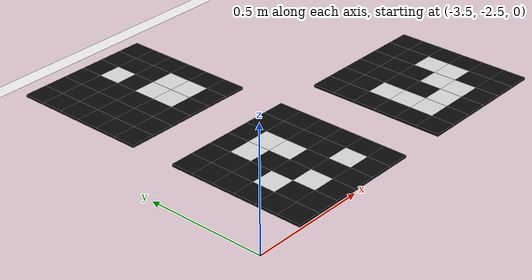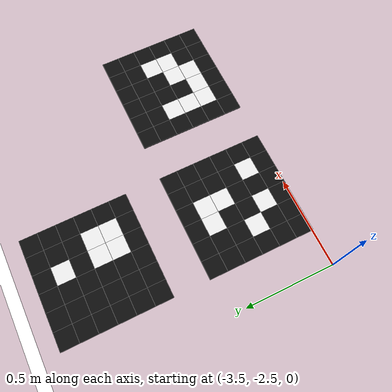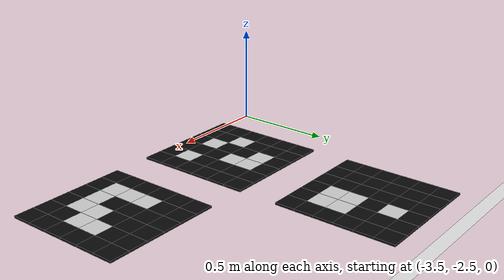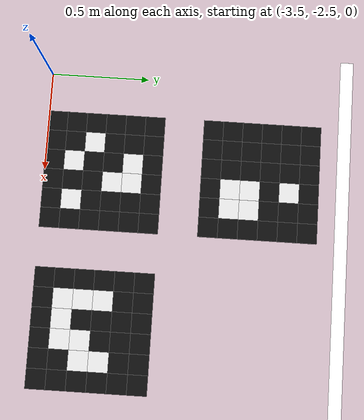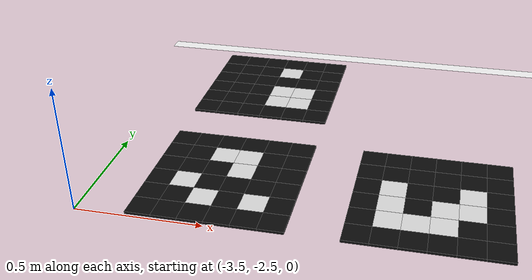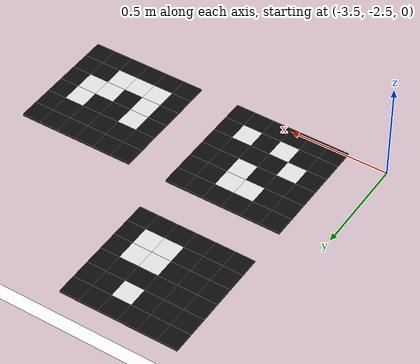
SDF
<sdf version="1.10">
 <world name="uav_world123">
  <model name="aruco_marker_104">
   <pose>-3 -2.2000000000000002 0.014999999999999999 0 0 0</pose>
   <static>true</static>
   <link name="link">
    <visual name="block_0_0">
     <pose>-0.25 -0.25 0 0 0 0</pose>
     <geometry><box><size>0.10000000000000001 0.10000000000000001 0.01</size></box></geometry>
     <material>
      <ambient>0.0500000007 0.0500000007 0.0500000007 1</ambient>
      <diffuse>0.0500000007 0.0500000007 0.0500000007 1</diffuse>
     </material>
    </visual>
    <visual name="block_0_1">
     <pose>-0.15000000000000002 -0.25 0 0 0 0</pose>
     <geometry><box><size>0.10000000000000001 0.10000000000000001 0.01</size></box></geometry>
     <material>
      <ambient>0.0500000007 0.0500000007 0.0500000007 1</ambient>
      <diffuse>0.0500000007 0.0500000007 0.0500000007 1</diffuse>
     </material>
    </visual>
    <visual name="block_0_2">
     <pose>-0.050000000000000003 -0.25 0 0 0 0</pose>
     <geometry><box><size>0.10000000000000001 0.10000000000000001 0.01</size></box></geometry>
     <material>
      <ambient>0.0500000007 0.0500000007 0.0500000007 1</ambient>
      <diffuse>0.0500000007 0.0500000007 0.0500000007 1</diffuse>
     </material>
    </visual>
    <visual name="block_0_3">
     <pose>0.050000000000000003 -0.25 0 0 0 0</pose>
     <geometry><box><size>0.10000000000000001 0.10000000000000001 0.01</size></box></geometry>
     <material>
      <ambient>0.0500000007 0.0500000007 0.0500000007 1</ambient>
      <diffuse>0.0500000007 0.0500000007 0.0500000007 1</diffuse>
     </material>
    </visual>
    <visual name="block_0_4">
     <pose>0.15000000000000002 -0.25 0 0 0 0</pose>
     <geometry><box><size>0.10000000000000001 0.10000000000000001 0.01</size></box></geometry>
     <material>
      <ambient>0.0500000007 0.0500000007 0.0500000007 1</ambient>
      <diffuse>0.0500000007 0.0500000007 0.0500000007 1</diffuse>
     </material>
    </visual>
    <visual name="block_0_5">
     <pose>0.25 -0.25 0 0 0 0</pose>
     <geometry><box><size>0.10000000000000001 0.10000000000000001 0.01</size></box></geometry>
     <material>
      <ambient>0.0500000007 0.0500000007 0.0500000007 1</ambient>
      <diffuse>0.0500000007 0.0500000007 0.0500000007 1</diffuse>
     </material>
    </visual>
    <visual name="block_1_0">
     <pose>-0.25 -0.15000000000000002 0 0 0 0</pose>
     <geometry><box><size>0.10000000000000001 0.10000000000000001 0.01</size></box></geometry>
     <material>
      <ambient>0.0500000007 0.0500000007 0.0500000007 1</ambient>
      <diffuse>0.0500000007 0.0500000007 0.0500000007 1</diffuse>
     </material>
    </visual>
    <visual name="block_1_1">
     <pose>-0.15000000000000002 -0.15000000000000002 0 0 0 0</pose>
     <geometry><box><size>0.10000000000000001 0.10000000000000001 0.01</size></box></geometry>
     <material>
      <ambient>0.0500000007 0.0500000007 0.0500000007 1</ambient>
      <diffuse>0.0500000007 0.0500000007 0.0500000007 1</diffuse>
     </material>
    </visual>
    <visual name="block_1_2">
     <pose>-0.050000000000000003 -0.15000000000000002 0 0 0 0</pose>
     <geometry><box><size>0.10000000000000001 0.10000000000000001 0.01</size></box></geometry>
     <material>
      <ambient>0.899999976 0.899999976 0.899999976 1</ambient>
      <diffuse>0.899999976 0.899999976 0.899999976 1</diffuse>
     </material>
    </visual>
    <visual name="block_1_3">
     <pose>0.050000000000000003 -0.15000000000000002 0 0 0 0</pose>
     <geometry><box><size>0.10000000000000001 0.10000000000000001 0.01</size></box></geometry>
     <material>
      <ambient>0.0500000007 0.0500000007 0.0500000007 1</ambient>
      <diffuse>0.0500000007 0.0500000007 0.0500000007 1</diffuse>
     </material>
    </visual>
    <visual name="block_1_4">
     <pose>0.15000000000000002 -0.15000000000000002 0 0 0 0</pose>
     <geometry><box><size>0.10000000000000001 0.10000000000000001 0.01</size></box></geometry>
     <material>
      <ambient>0.899999976 0.899999976 0.899999976 1</ambient>
      <diffuse>0.899999976 0.899999976 0.899999976 1</diffuse>
     </material>
    </visual>
    <visual name="block_1_5">
     <pose>0.25 -0.15000000000000002 0 0 0 0</pose>
     <geometry><box><size>0.10000000000000001 0.10000000000000001 0.01</size></box></geometry>
     <material>
      <ambient>0.0500000007 0.0500000007 0.0500000007 1</ambient>
      <diffuse>0.0500000007 0.0500000007 0.0500000007 1</diffuse>
     </material>
    </visual>
    <visual name="block_2_0">
     <pose>-0.25 -0.050000000000000003 0 0 0 0</pose>
     <geometry><box><size>0.10000000000000001 0.10000000000000001 0.01</size></box></geometry>
     <material>
      <ambient>0.0500000007 0.0500000007 0.0500000007 1</ambient>
      <diffuse>0.0500000007 0.0500000007 0.0500000007 1</diffuse>
     </material>
    </visual>
    <visual name="block_2_1">
     <pose>-0.15000000000000002 -0.050000000000000003 0 0 0 0</pose>
     <geometry><box><size>0.10000000000000001 0.10000000000000001 0.01</size></box></geometry>
     <material>
      <ambient>0.899999976 0.899999976 0.899999976 1</ambient>
      <diffuse>0.899999976 0.899999976 0.899999976 1</diffuse>
     </material>
    </visual>
    <visual name="block_2_2">
     <pose>-0.050000000000000003 -0.050000000000000003 0 0 0 0</pose>
     <geometry><box><size>0.10000000000000001 0.10000000000000001 0.01</size></box></geometry>
     <material>
      <ambient>0.0500000007 0.0500000007 0.0500000007 1</ambient>
      <diffuse>0.0500000007 0.0500000007 0.0500000007 1</diffuse>
     </material>
    </visual>
    <visual name="block_2_3">
     <pose>0.050000000000000003 -0.050000000000000003 0 0 0 0</pose>
     <geometry><box><size>0.10000000000000001 0.10000000000000001 0.01</size></box></geometry>
     <material>
      <ambient>0.0500000007 0.0500000007 0.0500000007 1</ambient>
      <diffuse>0.0500000007 0.0500000007 0.0500000007 1</diffuse>
     </material>
    </visual>
    <visual name="block_2_4">
     <pose>0.15000000000000002 -0.050000000000000003 0 0 0 0</pose>
     <geometry><box><size>0.10000000000000001 0.10000000000000001 0.01</size></box></geometry>
     <material>
      <ambient>0.0500000007 0.0500000007 0.0500000007 1</ambient>
      <diffuse>0.0500000007 0.0500000007 0.0500000007 1</diffuse>
     </material>
    </visual>
    <visual name="block_2_5">
     <pose>0.25 -0.050000000000000003 0 0 0 0</pose>
     <geometry><box><size>0.10000000000000001 0.10000000000000001 0.01</size></box></geometry>
     <material>
      <ambient>0.0500000007 0.0500000007 0.0500000007 1</ambient>
      <diffuse>0.0500000007 0.0500000007 0.0500000007 1</diffuse>
     </material>
    </visual>
    <visual name="block_3_0">
     <pose>-0.25 0.050000000000000003 0 0 0 0</pose>
     <geometry><box><size>0.10000000000000001 0.10000000000000001 0.01</size></box></geometry>
     <material>
      <ambient>0.0500000007 0.0500000007 0.0500000007 1</ambient>
      <diffuse>0.0500000007 0.0500000007 0.0500000007 1</diffuse>
     </material>
    </visual>
    <visual name="block_3_1">
     <pose>-0.15000000000000002 0.050000000000000003 0 0 0 0</pose>
     <geometry><box><size>0.10000000000000001 0.10000000000000001 0.01</size></box></geometry>
     <material>
      <ambient>0.0500000007 0.0500000007 0.0500000007 1</ambient>
      <diffuse>0.0500000007 0.0500000007 0.0500000007 1</diffuse>
     </material>
    </visual>
    <visual name="block_3_2">
     <pose>-0.050000000000000003 0.050000000000000003 0 0 0 0</pose>
     <geometry><box><size>0.10000000000000001 0.10000000000000001 0.01</size></box></geometry>
     <material>
      <ambient>0.0500000007 0.0500000007 0.0500000007 1</ambient>
      <diffuse>0.0500000007 0.0500000007 0.0500000007 1</diffuse>
     </material>
    </visual>
    <visual name="block_3_3">
     <pose>0.050000000000000003 0.050000000000000003 0 0 0 0</pose>
     <geometry><box><size>0.10000000000000001 0.10000000000000001 0.01</size></box></geometry>
     <material>
      <ambient>0.899999976 0.899999976 0.899999976 1</ambient>
      <diffuse>0.899999976 0.899999976 0.899999976 1</diffuse>
     </material>
    </visual>
    <visual name="block_3_4">
     <pose>0.15000000000000002 0.050000000000000003 0 0 0 0</pose>
     <geometry><box><size>0.10000000000000001 0.10000000000000001 0.01</size></box></geometry>
     <material>
      <ambient>0.0500000007 0.0500000007 0.0500000007 1</ambient>
      <diffuse>0.0500000007 0.0500000007 0.0500000007 1</diffuse>
     </material>
    </visual>
    <visual name="block_3_5">
     <pose>0.25 0.050000000000000003 0 0 0 0</pose>
     <geometry><box><size>0.10000000000000001 0.10000000000000001 0.01</size></box></geometry>
     <material>
      <ambient>0.0500000007 0.0500000007 0.0500000007 1</ambient>
      <diffuse>0.0500000007 0.0500000007 0.0500000007 1</diffuse>
     </material>
    </visual>
    <visual name="block_4_0">
     <pose>-0.25 0.15000000000000002 0 0 0 0</pose>
     <geometry><box><size>0.10000000000000001 0.10000000000000001 0.01</size></box></geometry>
     <material>
      <ambient>0.0500000007 0.0500000007 0.0500000007 1</ambient>
      <diffuse>0.0500000007 0.0500000007 0.0500000007 1</diffuse>
     </material>
    </visual>
    <visual name="block_4_1">
     <pose>-0.15000000000000002 0.15000000000000002 0 0 0 0</pose>
     <geometry><box><size>0.10000000000000001 0.10000000000000001 0.01</size></box></geometry>
     <material>
      <ambient>0.0500000007 0.0500000007 0.0500000007 1</ambient>
      <diffuse>0.0500000007 0.0500000007 0.0500000007 1</diffuse>
     </material>
    </visual>
    <visual name="block_4_2">
     <pose>-0.050000000000000003 0.15000000000000002 0 0 0 0</pose>
     <geometry><box><size>0.10000000000000001 0.10000000000000001 0.01</size></box></geometry>
     <material>
      <ambient>0.899999976 0.899999976 0.899999976 1</ambient>
      <diffuse>0.899999976 0.899999976 0.899999976 1</diffuse>
     </material>
    </visual>
    <visual name="block_4_3">
     <pose>0.050000000000000003 0.15000000000000002 0 0 0 0</pose>
     <geometry><box><size>0.10000000000000001 0.10000000000000001 0.01</size></box></geometry>
     <material>
      <ambient>0.899999976 0.899999976 0.899999976 1</ambient>
      <diffuse>0.899999976 0.899999976 0.899999976 1</diffuse>
     </material>
    </visual>
    <visual name="block_4_4">
     <pose>0.15000000000000002 0.15000000000000002 0 0 0 0</pose>
     <geometry><box><size>0.10000000000000001 0.10000000000000001 0.01</size></box></geometry>
     <material>
      <ambient>0.0500000007 0.0500000007 0.0500000007 1</ambient>
      <diffuse>0.0500000007 0.0500000007 0.0500000007 1</diffuse>
     </material>
    </visual>
    <visual name="block_4_5">
     <pose>0.25 0.15000000000000002 0 0 0 0</pose>
     <geometry><box><size>0.10000000000000001 0.10000000000000001 0.01</size></box></geometry>
     <material>
      <ambient>0.0500000007 0.0500000007 0.0500000007 1</ambient>
      <diffuse>0.0500000007 0.0500000007 0.0500000007 1</diffuse>
     </material>
    </visual>
    <visual name="block_5_0">
     <pose>-0.25 0.25 0 0 0 0</pose>
     <geometry><box><size>0.10000000000000001 0.10000000000000001 0.01</size></box></geometry>
     <material>
      <ambient>0.0500000007 0.0500000007 0.0500000007 1</ambient>
      <diffuse>0.0500000007 0.0500000007 0.0500000007 1</diffuse>
     </material>
    </visual>
    <visual name="block_5_1">
     <pose>-0.15000000000000002 0.25 0 0 0 0</pose>
     <geometry><box><size>0.10000000000000001 0.10000000000000001 0.01</size></box></geometry>
     <material>
      <ambient>0.0500000007 0.0500000007 0.0500000007 1</ambient>
      <diffuse>0.0500000007 0.0500000007 0.0500000007 1</diffuse>
     </material>
    </visual>
    <visual name="block_5_2">
     <pose>-0.050000000000000003 0.25 0 0 0 0</pose>
     <geometry><box><size>0.10000000000000001 0.10000000000000001 0.01</size></box></geometry>
     <material>
      <ambient>0.0500000007 0.0500000007 0.0500000007 1</ambient>
      <diffuse>0.0500000007 0.0500000007 0.0500000007 1</diffuse>
     </material>
    </visual>
    <visual name="block_5_3">
     <pose>0.050000000000000003 0.25 0 0 0 0</pose>
     <geometry><box><size>0.10000000000000001 0.10000000000000001 0.01</size></box></geometry>
     <material>
      <ambient>0.0500000007 0.0500000007 0.0500000007 1</ambient>
      <diffuse>0.0500000007 0.0500000007 0.0500000007 1</diffuse>
     </material>
    </visual>
    <visual name="block_5_4">
     <pose>0.15000000000000002 0.25 0 0 0 0</pose>
     <geometry><box><size>0.10000000000000001 0.10000000000000001 0.01</size></box></geometry>
     <material>
      <ambient>0.0500000007 0.0500000007 0.0500000007 1</ambient>
      <diffuse>0.0500000007 0.0500000007 0.0500000007 1</diffuse>
     </material>
    </visual>
    <visual name="block_5_5">
     <pose>0.25 0.25 0 0 0 0</pose>
     <geometry><box><size>0.10000000000000001 0.10000000000000001 0.01</size></box></geometry>
     <material>
      <ambient>0.0500000007 0.0500000007 0.0500000007 1</ambient>
      <diffuse>0.0500000007 0.0500000007 0.0500000007 1</diffuse>
     </material>
    </visual>
    <inertial>
     <mass>1</mass>
     <inertia><ixx>1</ixx><ixy>0</ixy><ixz>0</ixz><iyy>1</iyy><iyz>0</iyz><izz>1</izz></inertia>
    </inertial>
   </link>
  </model>
  <model name="aruco_marker_105">
   <pose>-2.2000000000000002 -2.2000000000000002 0.014999999999999999 0 0 0</pose>
   <static>true</static>
   <link name="link">
    <visual name="block_0_0">
     <pose>-0.25 -0.25 0 0 0 0</pose>
     <geometry><box><size>0.10000000000000001 0.10000000000000001 0.01</size></box></geometry>
     <material>
      <ambient>0.0500000007 0.0500000007 0.0500000007 1</ambient>
      <diffuse>0.0500000007 0.0500000007 0.0500000007 1</diffuse>
     </material>
    </visual>
    <visual name="block_0_1">
     <pose>-0.15000000000000002 -0.25 0 0 0 0</pose>
     <geometry><box><size>0.10000000000000001 0.10000000000000001 0.01</size></box></geometry>
     <material>
      <ambient>0.0500000007 0.0500000007 0.0500000007 1</ambient>
      <diffuse>0.0500000007 0.0500000007 0.0500000007 1</diffuse>
     </material>
    </visual>
    <visual name="block_0_2">
     <pose>-0.050000000000000003 -0.25 0 0 0 0</pose>
     <geometry><box><size>0.10000000000000001 0.10000000000000001 0.01</size></box></geometry>
     <material>
      <ambient>0.0500000007 0.0500000007 0.0500000007 1</ambient>
      <diffuse>0.0500000007 0.0500000007 0.0500000007 1</diffuse>
     </material>
    </visual>
    <visual name="block_0_3">
     <pose>0.050000000000000003 -0.25 0 0 0 0</pose>
     <geometry><box><size>0.10000000000000001 0.10000000000000001 0.01</size></box></geometry>
     <material>
      <ambient>0.0500000007 0.0500000007 0.0500000007 1</ambient>
      <diffuse>0.0500000007 0.0500000007 0.0500000007 1</diffuse>
     </material>
    </visual>
    <visual name="block_0_4">
     <pose>0.15000000000000002 -0.25 0 0 0 0</pose>
     <geometry><box><size>0.10000000000000001 0.10000000000000001 0.01</size></box></geometry>
     <material>
      <ambient>0.0500000007 0.0500000007 0.0500000007 1</ambient>
      <diffuse>0.0500000007 0.0500000007 0.0500000007 1</diffuse>
     </material>
    </visual>
    <visual name="block_0_5">
     <pose>0.25 -0.25 0 0 0 0</pose>
     <geometry><box><size>0.10000000000000001 0.10000000000000001 0.01</size></box></geometry>
     <material>
      <ambient>0.0500000007 0.0500000007 0.0500000007 1</ambient>
      <diffuse>0.0500000007 0.0500000007 0.0500000007 1</diffuse>
     </material>
    </visual>
    <visual name="block_1_0">
     <pose>-0.25 -0.15000000000000002 0 0 0 0</pose>
     <geometry><box><size>0.10000000000000001 0.10000000000000001 0.01</size></box></geometry>
     <material>
      <ambient>0.0500000007 0.0500000007 0.0500000007 1</ambient>
      <diffuse>0.0500000007 0.0500000007 0.0500000007 1</diffuse>
     </material>
    </visual>
    <visual name="block_1_1">
     <pose>-0.15000000000000002 -0.15000000000000002 0 0 0 0</pose>
     <geometry><box><size>0.10000000000000001 0.10000000000000001 0.01</size></box></geometry>
     <material>
      <ambient>0.899999976 0.899999976 0.899999976 1</ambient>
      <diffuse>0.899999976 0.899999976 0.899999976 1</diffuse>
     </material>
    </visual>
    <visual name="block_1_2">
     <pose>-0.050000000000000003 -0.15000000000000002 0 0 0 0</pose>
     <geometry><box><size>0.10000000000000001 0.10000000000000001 0.01</size></box></geometry>
     <material>
      <ambient>0.899999976 0.899999976 0.899999976 1</ambient>
      <diffuse>0.899999976 0.899999976 0.899999976 1</diffuse>
     </material>
    </visual>
    <visual name="block_1_3">
     <pose>0.050000000000000003 -0.15000000000000002 0 0 0 0</pose>
     <geometry><box><size>0.10000000000000001 0.10000000000000001 0.01</size></box></geometry>
     <material>
      <ambient>0.899999976 0.899999976 0.899999976 1</ambient>
      <diffuse>0.899999976 0.899999976 0.899999976 1</diffuse>
     </material>
    </visual>
    <visual name="block_1_4">
     <pose>0.15000000000000002 -0.15000000000000002 0 0 0 0</pose>
     <geometry><box><size>0.10000000000000001 0.10000000000000001 0.01</size></box></geometry>
     <material>
      <ambient>0.0500000007 0.0500000007 0.0500000007 1</ambient>
      <diffuse>0.0500000007 0.0500000007 0.0500000007 1</diffuse>
     </material>
    </visual>
    <visual name="block_1_5">
     <pose>0.25 -0.15000000000000002 0 0 0 0</pose>
     <geometry><box><size>0.10000000000000001 0.10000000000000001 0.01</size></box></geometry>
     <material>
      <ambient>0.0500000007 0.0500000007 0.0500000007 1</ambient>
      <diffuse>0.0500000007 0.0500000007 0.0500000007 1</diffuse>
     </material>
    </visual>
    <visual name="block_2_0">
     <pose>-0.25 -0.050000000000000003 0 0 0 0</pose>
     <geometry><box><size>0.10000000000000001 0.10000000000000001 0.01</size></box></geometry>
     <material>
      <ambient>0.0500000007 0.0500000007 0.0500000007 1</ambient>
      <diffuse>0.0500000007 0.0500000007 0.0500000007 1</diffuse>
     </material>
    </visual>
    <visual name="block_2_1">
     <pose>-0.15000000000000002 -0.050000000000000003 0 0 0 0</pose>
     <geometry><box><size>0.10000000000000001 0.10000000000000001 0.01</size></box></geometry>
     <material>
      <ambient>0.899999976 0.899999976 0.899999976 1</ambient>
      <diffuse>0.899999976 0.899999976 0.899999976 1</diffuse>
     </material>
    </visual>
    <visual name="block_2_2">
     <pose>-0.050000000000000003 -0.050000000000000003 0 0 0 0</pose>
     <geometry><box><size>0.10000000000000001 0.10000000000000001 0.01</size></box></geometry>
     <material>
      <ambient>0.0500000007 0.0500000007 0.0500000007 1</ambient>
      <diffuse>0.0500000007 0.0500000007 0.0500000007 1</diffuse>
     </material>
    </visual>
    <visual name="block_2_3">
     <pose>0.050000000000000003 -0.050000000000000003 0 0 0 0</pose>
     <geometry><box><size>0.10000000000000001 0.10000000000000001 0.01</size></box></geometry>
     <material>
      <ambient>0.899999976 0.899999976 0.899999976 1</ambient>
      <diffuse>0.899999976 0.899999976 0.899999976 1</diffuse>
     </material>
    </visual>
    <visual name="block_2_4">
     <pose>0.15000000000000002 -0.050000000000000003 0 0 0 0</pose>
     <geometry><box><size>0.10000000000000001 0.10000000000000001 0.01</size></box></geometry>
     <material>
      <ambient>0.899999976 0.899999976 0.899999976 1</ambient>
      <diffuse>0.899999976 0.899999976 0.899999976 1</diffuse>
     </material>
    </visual>
    <visual name="block_2_5">
     <pose>0.25 -0.050000000000000003 0 0 0 0</pose>
     <geometry><box><size>0.10000000000000001 0.10000000000000001 0.01</size></box></geometry>
     <material>
      <ambient>0.0500000007 0.0500000007 0.0500000007 1</ambient>
      <diffuse>0.0500000007 0.0500000007 0.0500000007 1</diffuse>
     </material>
    </visual>
    <visual name="block_3_0">
     <pose>-0.25 0.050000000000000003 0 0 0 0</pose>
     <geometry><box><size>0.10000000000000001 0.10000000000000001 0.01</size></box></geometry>
     <material>
      <ambient>0.0500000007 0.0500000007 0.0500000007 1</ambient>
      <diffuse>0.0500000007 0.0500000007 0.0500000007 1</diffuse>
     </material>
    </visual>
    <visual name="block_3_1">
     <pose>-0.15000000000000002 0.050000000000000003 0 0 0 0</pose>
     <geometry><box><size>0.10000000000000001 0.10000000000000001 0.01</size></box></geometry>
     <material>
      <ambient>0.899999976 0.899999976 0.899999976 1</ambient>
      <diffuse>0.899999976 0.899999976 0.899999976 1</diffuse>
     </material>
    </visual>
    <visual name="block_3_2">
     <pose>-0.050000000000000003 0.050000000000000003 0 0 0 0</pose>
     <geometry><box><size>0.10000000000000001 0.10000000000000001 0.01</size></box></geometry>
     <material>
      <ambient>0.0500000007 0.0500000007 0.0500000007 1</ambient>
      <diffuse>0.0500000007 0.0500000007 0.0500000007 1</diffuse>
     </material>
    </visual>
    <visual name="block_3_3">
     <pose>0.050000000000000003 0.050000000000000003 0 0 0 0</pose>
     <geometry><box><size>0.10000000000000001 0.10000000000000001 0.01</size></box></geometry>
     <material>
      <ambient>0.0500000007 0.0500000007 0.0500000007 1</ambient>
      <diffuse>0.0500000007 0.0500000007 0.0500000007 1</diffuse>
     </material>
    </visual>
    <visual name="block_3_4">
     <pose>0.15000000000000002 0.050000000000000003 0 0 0 0</pose>
     <geometry><box><size>0.10000000000000001 0.10000000000000001 0.01</size></box></geometry>
     <material>
      <ambient>0.899999976 0.899999976 0.899999976 1</ambient>
      <diffuse>0.899999976 0.899999976 0.899999976 1</diffuse>
     </material>
    </visual>
    <visual name="block_3_5">
     <pose>0.25 0.050000000000000003 0 0 0 0</pose>
     <geometry><box><size>0.10000000000000001 0.10000000000000001 0.01</size></box></geometry>
     <material>
      <ambient>0.0500000007 0.0500000007 0.0500000007 1</ambient>
      <diffuse>0.0500000007 0.0500000007 0.0500000007 1</diffuse>
     </material>
    </visual>
    <visual name="block_4_0">
     <pose>-0.25 0.15000000000000002 0 0 0 0</pose>
     <geometry><box><size>0.10000000000000001 0.10000000000000001 0.01</size></box></geometry>
     <material>
      <ambient>0.0500000007 0.0500000007 0.0500000007 1</ambient>
      <diffuse>0.0500000007 0.0500000007 0.0500000007 1</diffuse>
     </material>
    </visual>
    <visual name="block_4_1">
     <pose>-0.15000000000000002 0.15000000000000002 0 0 0 0</pose>
     <geometry><box><size>0.10000000000000001 0.10000000000000001 0.01</size></box></geometry>
     <material>
      <ambient>0.0500000007 0.0500000007 0.0500000007 1</ambient>
      <diffuse>0.0500000007 0.0500000007 0.0500000007 1</diffuse>
     </material>
    </visual>
    <visual name="block_4_2">
     <pose>-0.050000000000000003 0.15000000000000002 0 0 0 0</pose>
     <geometry><box><size>0.10000000000000001 0.10000000000000001 0.01</size></box></geometry>
     <material>
      <ambient>0.0500000007 0.0500000007 0.0500000007 1</ambient>
      <diffuse>0.0500000007 0.0500000007 0.0500000007 1</diffuse>
     </material>
    </visual>
    <visual name="block_4_3">
     <pose>0.050000000000000003 0.15000000000000002 0 0 0 0</pose>
     <geometry><box><size>0.10000000000000001 0.10000000000000001 0.01</size></box></geometry>
     <material>
      <ambient>0.0500000007 0.0500000007 0.0500000007 1</ambient>
      <diffuse>0.0500000007 0.0500000007 0.0500000007 1</diffuse>
     </material>
    </visual>
    <visual name="block_4_4">
     <pose>0.15000000000000002 0.15000000000000002 0 0 0 0</pose>
     <geometry><box><size>0.10000000000000001 0.10000000000000001 0.01</size></box></geometry>
     <material>
      <ambient>0.0500000007 0.0500000007 0.0500000007 1</ambient>
      <diffuse>0.0500000007 0.0500000007 0.0500000007 1</diffuse>
     </material>
    </visual>
    <visual name="block_4_5">
     <pose>0.25 0.15000000000000002 0 0 0 0</pose>
     <geometry><box><size>0.10000000000000001 0.10000000000000001 0.01</size></box></geometry>
     <material>
      <ambient>0.0500000007 0.0500000007 0.0500000007 1</ambient>
      <diffuse>0.0500000007 0.0500000007 0.0500000007 1</diffuse>
     </material>
    </visual>
    <visual name="block_5_0">
     <pose>-0.25 0.25 0 0 0 0</pose>
     <geometry><box><size>0.10000000000000001 0.10000000000000001 0.01</size></box></geometry>
     <material>
      <ambient>0.0500000007 0.0500000007 0.0500000007 1</ambient>
      <diffuse>0.0500000007 0.0500000007 0.0500000007 1</diffuse>
     </material>
    </visual>
    <visual name="block_5_1">
     <pose>-0.15000000000000002 0.25 0 0 0 0</pose>
     <geometry><box><size>0.10000000000000001 0.10000000000000001 0.01</size></box></geometry>
     <material>
      <ambient>0.0500000007 0.0500000007 0.0500000007 1</ambient>
      <diffuse>0.0500000007 0.0500000007 0.0500000007 1</diffuse>
     </material>
    </visual>
    <visual name="block_5_2">
     <pose>-0.050000000000000003 0.25 0 0 0 0</pose>
     <geometry><box><size>0.10000000000000001 0.10000000000000001 0.01</size></box></geometry>
     <material>
      <ambient>0.0500000007 0.0500000007 0.0500000007 1</ambient>
      <diffuse>0.0500000007 0.0500000007 0.0500000007 1</diffuse>
     </material>
    </visual>
    <visual name="block_5_3">
     <pose>0.050000000000000003 0.25 0 0 0 0</pose>
     <geometry><box><size>0.10000000000000001 0.10000000000000001 0.01</size></box></geometry>
     <material>
      <ambient>0.0500000007 0.0500000007 0.0500000007 1</ambient>
      <diffuse>0.0500000007 0.0500000007 0.0500000007 1</diffuse>
     </material>
    </visual>
    <visual name="block_5_4">
     <pose>0.15000000000000002 0.25 0 0 0 0</pose>
     <geometry><box><size>0.10000000000000001 0.10000000000000001 0.01</size></box></geometry>
     <material>
      <ambient>0.0500000007 0.0500000007 0.0500000007 1</ambient>
      <diffuse>0.0500000007 0.0500000007 0.0500000007 1</diffuse>
     </material>
    </visual>
    <visual name="block_5_5">
     <pose>0.25 0.25 0 0 0 0</pose>
     <geometry><box><size>0.10000000000000001 0.10000000000000001 0.01</size></box></geometry>
     <material>
      <ambient>0.0500000007 0.0500000007 0.0500000007 1</ambient>
      <diffuse>0.0500000007 0.0500000007 0.0500000007 1</diffuse>
     </material>
    </visual>
    <inertial>
     <mass>1</mass>
     <inertia><ixx>1</ixx><ixy>0</ixy><ixz>0</ixz><iyy>1</iyy><iyz>0</iyz><izz>1</izz></inertia>
    </inertial>
   </link>
  </model>
  <model name="aruco_marker_107">
   <pose>-3 -1.3999999999999999 0.014999999999999999 0 0 0</pose>
   <static>true</static>
   <link name="link">
    <visual name="block_0_0">
     <pose>-0.25 -0.25 0 0 0 0</pose>
     <geometry><box><size>0.10000000000000001 0.10000000000000001 0.01</size></box></geometry>
     <material>
      <ambient>0.0500000007 0.0500000007 0.0500000007 1</ambient>
      <diffuse>0.0500000007 0.0500000007 0.0500000007 1</diffuse>
     </material>
    </visual>
    <visual name="block_0_1">
     <pose>-0.15000000000000002 -0.25 0 0 0 0</pose>
     <geometry><box><size>0.10000000000000001 0.10000000000000001 0.01</size></box></geometry>
     <material>
      <ambient>0.0500000007 0.0500000007 0.0500000007 1</ambient>
      <diffuse>0.0500000007 0.0500000007 0.0500000007 1</diffuse>
     </material>
    </visual>
    <visual name="block_0_2">
     <pose>-0.050000000000000003 -0.25 0 0 0 0</pose>
     <geometry><box><size>0.10000000000000001 0.10000000000000001 0.01</size></box></geometry>
     <material>
      <ambient>0.0500000007 0.0500000007 0.0500000007 1</ambient>
      <diffuse>0.0500000007 0.0500000007 0.0500000007 1</diffuse>
     </material>
    </visual>
    <visual name="block_0_3">
     <pose>0.050000000000000003 -0.25 0 0 0 0</pose>
     <geometry><box><size>0.10000000000000001 0.10000000000000001 0.01</size></box></geometry>
     <material>
      <ambient>0.0500000007 0.0500000007 0.0500000007 1</ambient>
      <diffuse>0.0500000007 0.0500000007 0.0500000007 1</diffuse>
     </material>
    </visual>
    <visual name="block_0_4">
     <pose>0.15000000000000002 -0.25 0 0 0 0</pose>
     <geometry><box><size>0.10000000000000001 0.10000000000000001 0.01</size></box></geometry>
     <material>
      <ambient>0.0500000007 0.0500000007 0.0500000007 1</ambient>
      <diffuse>0.0500000007 0.0500000007 0.0500000007 1</diffuse>
     </material>
    </visual>
    <visual name="block_0_5">
     <pose>0.25 -0.25 0 0 0 0</pose>
     <geometry><box><size>0.10000000000000001 0.10000000000000001 0.01</size></box></geometry>
     <material>
      <ambient>0.0500000007 0.0500000007 0.0500000007 1</ambient>
      <diffuse>0.0500000007 0.0500000007 0.0500000007 1</diffuse>
     </material>
    </visual>
    <visual name="block_1_0">
     <pose>-0.25 -0.15000000000000002 0 0 0 0</pose>
     <geometry><box><size>0.10000000000000001 0.10000000000000001 0.01</size></box></geometry>
     <material>
      <ambient>0.0500000007 0.0500000007 0.0500000007 1</ambient>
      <diffuse>0.0500000007 0.0500000007 0.0500000007 1</diffuse>
     </material>
    </visual>
    <visual name="block_1_1">
     <pose>-0.15000000000000002 -0.15000000000000002 0 0 0 0</pose>
     <geometry><box><size>0.10000000000000001 0.10000000000000001 0.01</size></box></geometry>
     <material>
      <ambient>0.0500000007 0.0500000007 0.0500000007 1</ambient>
      <diffuse>0.0500000007 0.0500000007 0.0500000007 1</diffuse>
     </material>
    </visual>
    <visual name="block_1_2">
     <pose>-0.050000000000000003 -0.15000000000000002 0 0 0 0</pose>
     <geometry><box><size>0.10000000000000001 0.10000000000000001 0.01</size></box></geometry>
     <material>
      <ambient>0.0500000007 0.0500000007 0.0500000007 1</ambient>
      <diffuse>0.0500000007 0.0500000007 0.0500000007 1</diffuse>
     </material>
    </visual>
    <visual name="block_1_3">
     <pose>0.050000000000000003 -0.15000000000000002 0 0 0 0</pose>
     <geometry><box><size>0.10000000000000001 0.10000000000000001 0.01</size></box></geometry>
     <material>
      <ambient>0.899999976 0.899999976 0.899999976 1</ambient>
      <diffuse>0.899999976 0.899999976 0.899999976 1</diffuse>
     </material>
    </visual>
    <visual name="block_1_4">
     <pose>0.15000000000000002 -0.15000000000000002 0 0 0 0</pose>
     <geometry><box><size>0.10000000000000001 0.10000000000000001 0.01</size></box></geometry>
     <material>
      <ambient>0.899999976 0.899999976 0.899999976 1</ambient>
      <diffuse>0.899999976 0.899999976 0.899999976 1</diffuse>
     </material>
    </visual>
    <visual name="block_1_5">
     <pose>0.25 -0.15000000000000002 0 0 0 0</pose>
     <geometry><box><size>0.10000000000000001 0.10000000000000001 0.01</size></box></geometry>
     <material>
      <ambient>0.0500000007 0.0500000007 0.0500000007 1</ambient>
      <diffuse>0.0500000007 0.0500000007 0.0500000007 1</diffuse>
     </material>
    </visual>
    <visual name="block_2_0">
     <pose>-0.25 -0.050000000000000003 0 0 0 0</pose>
     <geometry><box><size>0.10000000000000001 0.10000000000000001 0.01</size></box></geometry>
     <material>
      <ambient>0.0500000007 0.0500000007 0.0500000007 1</ambient>
      <diffuse>0.0500000007 0.0500000007 0.0500000007 1</diffuse>
     </material>
    </visual>
    <visual name="block_2_1">
     <pose>-0.15000000000000002 -0.050000000000000003 0 0 0 0</pose>
     <geometry><box><size>0.10000000000000001 0.10000000000000001 0.01</size></box></geometry>
     <material>
      <ambient>0.0500000007 0.0500000007 0.0500000007 1</ambient>
      <diffuse>0.0500000007 0.0500000007 0.0500000007 1</diffuse>
     </material>
    </visual>
    <visual name="block_2_2">
     <pose>-0.050000000000000003 -0.050000000000000003 0 0 0 0</pose>
     <geometry><box><size>0.10000000000000001 0.10000000000000001 0.01</size></box></geometry>
     <material>
      <ambient>0.0500000007 0.0500000007 0.0500000007 1</ambient>
      <diffuse>0.0500000007 0.0500000007 0.0500000007 1</diffuse>
     </material>
    </visual>
    <visual name="block_2_3">
     <pose>0.050000000000000003 -0.050000000000000003 0 0 0 0</pose>
     <geometry><box><size>0.10000000000000001 0.10000000000000001 0.01</size></box></geometry>
     <material>
      <ambient>0.899999976 0.899999976 0.899999976 1</ambient>
      <diffuse>0.899999976 0.899999976 0.899999976 1</diffuse>
     </material>
    </visual>
    <visual name="block_2_4">
     <pose>0.15000000000000002 -0.050000000000000003 0 0 0 0</pose>
     <geometry><box><size>0.10000000000000001 0.10000000000000001 0.01</size></box></geometry>
     <material>
      <ambient>0.899999976 0.899999976 0.899999976 1</ambient>
      <diffuse>0.899999976 0.899999976 0.899999976 1</diffuse>
     </material>
    </visual>
    <visual name="block_2_5">
     <pose>0.25 -0.050000000000000003 0 0 0 0</pose>
     <geometry><box><size>0.10000000000000001 0.10000000000000001 0.01</size></box></geometry>
     <material>
      <ambient>0.0500000007 0.0500000007 0.0500000007 1</ambient>
      <diffuse>0.0500000007 0.0500000007 0.0500000007 1</diffuse>
     </material>
    </visual>
    <visual name="block_3_0">
     <pose>-0.25 0.050000000000000003 0 0 0 0</pose>
     <geometry><box><size>0.10000000000000001 0.10000000000000001 0.01</size></box></geometry>
     <material>
      <ambient>0.0500000007 0.0500000007 0.0500000007 1</ambient>
      <diffuse>0.0500000007 0.0500000007 0.0500000007 1</diffuse>
     </material>
    </visual>
    <visual name="block_3_1">
     <pose>-0.15000000000000002 0.050000000000000003 0 0 0 0</pose>
     <geometry><box><size>0.10000000000000001 0.10000000000000001 0.01</size></box></geometry>
     <material>
      <ambient>0.0500000007 0.0500000007 0.0500000007 1</ambient>
      <diffuse>0.0500000007 0.0500000007 0.0500000007 1</diffuse>
     </material>
    </visual>
    <visual name="block_3_2">
     <pose>-0.050000000000000003 0.050000000000000003 0 0 0 0</pose>
     <geometry><box><size>0.10000000000000001 0.10000000000000001 0.01</size></box></geometry>
     <material>
      <ambient>0.0500000007 0.0500000007 0.0500000007 1</ambient>
      <diffuse>0.0500000007 0.0500000007 0.0500000007 1</diffuse>
     </material>
    </visual>
    <visual name="block_3_3">
     <pose>0.050000000000000003 0.050000000000000003 0 0 0 0</pose>
     <geometry><box><size>0.10000000000000001 0.10000000000000001 0.01</size></box></geometry>
     <material>
      <ambient>0.0500000007 0.0500000007 0.0500000007 1</ambient>
      <diffuse>0.0500000007 0.0500000007 0.0500000007 1</diffuse>
     </material>
    </visual>
    <visual name="block_3_4">
     <pose>0.15000000000000002 0.050000000000000003 0 0 0 0</pose>
     <geometry><box><size>0.10000000000000001 0.10000000000000001 0.01</size></box></geometry>
     <material>
      <ambient>0.0500000007 0.0500000007 0.0500000007 1</ambient>
      <diffuse>0.0500000007 0.0500000007 0.0500000007 1</diffuse>
     </material>
    </visual>
    <visual name="block_3_5">
     <pose>0.25 0.050000000000000003 0 0 0 0</pose>
     <geometry><box><size>0.10000000000000001 0.10000000000000001 0.01</size></box></geometry>
     <material>
      <ambient>0.0500000007 0.0500000007 0.0500000007 1</ambient>
      <diffuse>0.0500000007 0.0500000007 0.0500000007 1</diffuse>
     </material>
    </visual>
    <visual name="block_4_0">
     <pose>-0.25 0.15000000000000002 0 0 0 0</pose>
     <geometry><box><size>0.10000000000000001 0.10000000000000001 0.01</size></box></geometry>
     <material>
      <ambient>0.0500000007 0.0500000007 0.0500000007 1</ambient>
      <diffuse>0.0500000007 0.0500000007 0.0500000007 1</diffuse>
     </material>
    </visual>
    <visual name="block_4_1">
     <pose>-0.15000000000000002 0.15000000000000002 0 0 0 0</pose>
     <geometry><box><size>0.10000000000000001 0.10000000000000001 0.01</size></box></geometry>
     <material>
      <ambient>0.0500000007 0.0500000007 0.0500000007 1</ambient>
      <diffuse>0.0500000007 0.0500000007 0.0500000007 1</diffuse>
     </material>
    </visual>
    <visual name="block_4_2">
     <pose>-0.050000000000000003 0.15000000000000002 0 0 0 0</pose>
     <geometry><box><size>0.10000000000000001 0.10000000000000001 0.01</size></box></geometry>
     <material>
      <ambient>0.0500000007 0.0500000007 0.0500000007 1</ambient>
      <diffuse>0.0500000007 0.0500000007 0.0500000007 1</diffuse>
     </material>
    </visual>
    <visual name="block_4_3">
     <pose>0.050000000000000003 0.15000000000000002 0 0 0 0</pose>
     <geometry><box><size>0.10000000000000001 0.10000000000000001 0.01</size></box></geometry>
     <material>
      <ambient>0.899999976 0.899999976 0.899999976 1</ambient>
      <diffuse>0.899999976 0.899999976 0.899999976 1</diffuse>
     </material>
    </visual>
    <visual name="block_4_4">
     <pose>0.15000000000000002 0.15000000000000002 0 0 0 0</pose>
     <geometry><box><size>0.10000000000000001 0.10000000000000001 0.01</size></box></geometry>
     <material>
      <ambient>0.0500000007 0.0500000007 0.0500000007 1</ambient>
      <diffuse>0.0500000007 0.0500000007 0.0500000007 1</diffuse>
     </material>
    </visual>
    <visual name="block_4_5">
     <pose>0.25 0.15000000000000002 0 0 0 0</pose>
     <geometry><box><size>0.10000000000000001 0.10000000000000001 0.01</size></box></geometry>
     <material>
      <ambient>0.0500000007 0.0500000007 0.0500000007 1</ambient>
      <diffuse>0.0500000007 0.0500000007 0.0500000007 1</diffuse>
     </material>
    </visual>
    <visual name="block_5_0">
     <pose>-0.25 0.25 0 0 0 0</pose>
     <geometry><box><size>0.10000000000000001 0.10000000000000001 0.01</size></box></geometry>
     <material>
      <ambient>0.0500000007 0.0500000007 0.0500000007 1</ambient>
      <diffuse>0.0500000007 0.0500000007 0.0500000007 1</diffuse>
     </material>
    </visual>
    <visual name="block_5_1">
     <pose>-0.15000000000000002 0.25 0 0 0 0</pose>
     <geometry><box><size>0.10000000000000001 0.10000000000000001 0.01</size></box></geometry>
     <material>
      <ambient>0.0500000007 0.0500000007 0.0500000007 1</ambient>
      <diffuse>0.0500000007 0.0500000007 0.0500000007 1</diffuse>
     </material>
    </visual>
    <visual name="block_5_2">
     <pose>-0.050000000000000003 0.25 0 0 0 0</pose>
     <geometry><box><size>0.10000000000000001 0.10000000000000001 0.01</size></box></geometry>
     <material>
      <ambient>0.0500000007 0.0500000007 0.0500000007 1</ambient>
      <diffuse>0.0500000007 0.0500000007 0.0500000007 1</diffuse>
     </material>
    </visual>
    <visual name="block_5_3">
     <pose>0.050000000000000003 0.25 0 0 0 0</pose>
     <geometry><box><size>0.10000000000000001 0.10000000000000001 0.01</size></box></geometry>
     <material>
      <ambient>0.0500000007 0.0500000007 0.0500000007 1</ambient>
      <diffuse>0.0500000007 0.0500000007 0.0500000007 1</diffuse>
     </material>
    </visual>
    <visual name="block_5_4">
     <pose>0.15000000000000002 0.25 0 0 0 0</pose>
     <geometry><box><size>0.10000000000000001 0.10000000000000001 0.01</size></box></geometry>
     <material>
      <ambient>0.0500000007 0.0500000007 0.0500000007 1</ambient>
      <diffuse>0.0500000007 0.0500000007 0.0500000007 1</diffuse>
     </material>
    </visual>
    <visual name="block_5_5">
     <pose>0.25 0.25 0 0 0 0</pose>
     <geometry><box><size>0.10000000000000001 0.10000000000000001 0.01</size></box></geometry>
     <material>
      <ambient>0.0500000007 0.0500000007 0.0500000007 1</ambient>
      <diffuse>0.0500000007 0.0500000007 0.0500000007 1</diffuse>
     </material>
    </visual>
    <inertial>
     <mass>1</mass>
     <inertia><ixx>1</ixx><ixy>0</ixy><ixz>0</ixz><iyy>1</iyy><iyz>0</iyz><izz>1</izz></inertia>
    </inertial>
   </link>
  </model>
  <model name="grasspatch">
   <static>true</static>
   <link name="link">
    <collision name="collision">
     <geometry><plane><normal>0 0 1</normal><size>15 15</size></plane></geometry>
     <surface><friction><ode><mu>0.5</mu><mu2>0.5</mu2></ode></friction></surface>
    </collision>
    <visual name="visual_s10">
     <cast_shadows>false</cast_shadows>
     <geometry><plane><normal>0 0 1</normal><size>15 15</size></plane></geometry>
     <material>
      <diffuse>1 1 1 1</diffuse>
      <specular>1 1 1 1</specular>
      <pbr>
       <metal>
        <albedo_map>materials/textures/grass_dry.png</albedo_map>
        <normal_map>materials/textures/grass_dry.png</normal_map>
       </metal>
      </pbr>
     </material>
    </visual>
    <inertial>
     <mass>1</mass>
     <inertia><ixx>1</ixx><ixy>0</ixy><ixz>0</ixz><iyy>1</iyy><iyz>0</iyz><izz>1</izz></inertia>
    </inertial>
   </link>
   <pose>-7.463510318490302 6.4927389108726921 0 0 0 0</pose>
  </model>
 </world>
</sdf>
